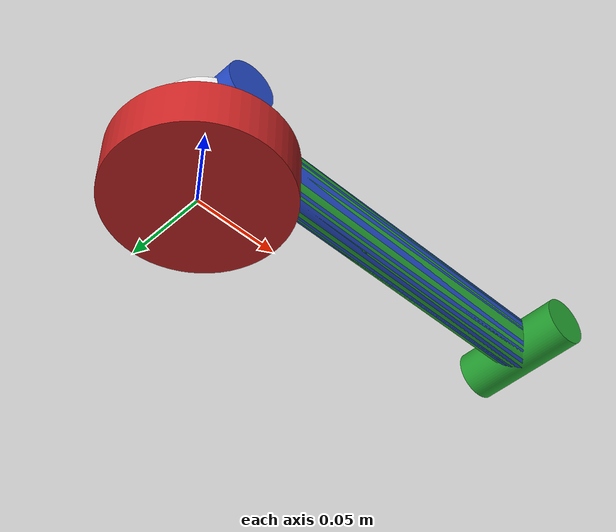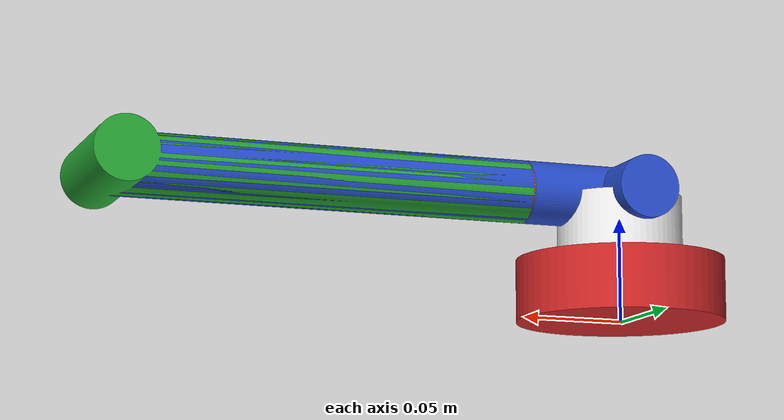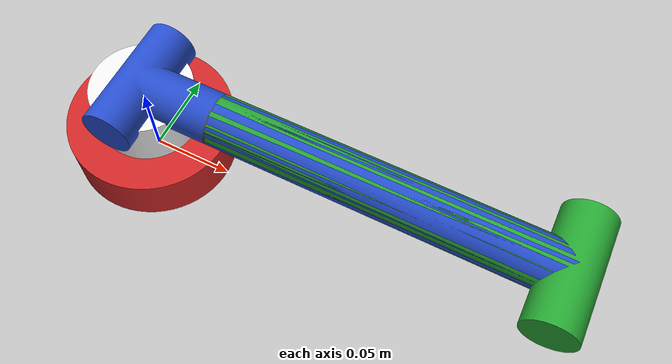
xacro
<?xml version="1.0"?>
  <robot xmlns:xacro="http://ros.org/wiki/xacro" name="manipulator">

    <xacro:macro name="inertial_cuboid" params="mass x_length y_length z_length">
      <inertial>
        <mass value="${mass}" />
        <origin xyz="0 0 0" />
        <inertia ixx="${(1/12) * mass * (y_length*y_length + z_length*z_length)}" ixy="0.0" ixz="0.0"
          iyy="${(1/12) * mass * (x_length*x_length + z_length*z_length)}" iyz="0.0"
          izz="${(1/12) * mass * (x_length*x_length + y_length*y_length)}" />
      </inertial>
    </xacro:macro>

    <xacro:macro name="inertial_dummy">
      <xacro:inertial_cuboid mass="1.0" x_length="0.01" y_length="0.01" z_length="0.01" />
    </xacro:macro>

    <xacro:property name="base_height" value="0.03" />
    <xacro:property name="link1_length" value="0.03" />
    <xacro:property name="link2_length" value="0.25" />
    <xacro:property name="link3_length" value="0.20" />

    <link name="world" />

    <joint name="fixed_joint" type="fixed">
      <parent link="world"/>
      <child link="base_link"/>
      <origin xyz="0 0 0" rpy="0 0 0"/>
    </joint>

    <link name="base_link">
      <visual>
        <origin xyz="0 0 0" rpy="0 0 0" />
        <geometry>
          <mesh filename="$(cwd)/manipulator_gazebo/model/manipulator/base.stl"/>
        </geometry>
      </visual>
      <collision>
        <origin xyz="0 0 0" rpy="0 0 0" />
        <geometry>
          <mesh filename="$(cwd)/manipulator_gazebo/model/manipulator/base.stl"/>
        </geometry>
      </collision>
      <xacro:inertial_dummy/>
    </link>

    <gazebo reference="base_link">
      <material>Gazebo/Red</material>
    </gazebo>

    <joint name="joint_1" type="continuous">
      <parent link="base_link"/>
      <child link="link_1"/>
      <axis xyz="0 0 1"/>
      <origin xyz="0 0 ${base_height}" rpy="0 0 0"/>
    </joint>

    <link name="link_1">
      <visual>
        <origin xyz="0 0 0" rpy="0 0 0" />
        <geometry>
          <mesh filename="$(cwd)/manipulator_gazebo/model/manipulator/link_1.stl"/>
        </geometry>
      </visual>
      <collision>
        <origin xyz="0 0 0" rpy="0 0 0" />
        <geometry>
          <mesh filename="$(cwd)/manipulator_gazebo/model/manipulator/link_1.stl"/>
        </geometry>
      </collision>
      <xacro:inertial_dummy/>
    </link>

    <gazebo reference="link_1">
      <material>Gazebo/White</material>
      <turnGravityOff>true</turnGravityOff>
    </gazebo>

    <joint name="joint_2" type="continuous">
      <parent link="link_1"/>
      <child link="link_2"/>
      <axis xyz="0 0 1"/>
      <origin xyz="0 0 ${link1_length}" rpy="${pi/2} 0 0"/>
    </joint>

    <link name="link_2">
      <visual>
        <origin xyz="0 0 0" rpy="0 0 0" />
        <geometry>
          <mesh filename="$(cwd)/manipulator_gazebo/model/manipulator/link_2.stl"/>
        </geometry>
      </visual>
      <collision>
        <origin xyz="0 0 0" rpy="0 0 0" />
        <geometry>
          <mesh filename="$(cwd)/manipulator_gazebo/model/manipulator/link_2.stl"/>
        </geometry>
      </collision>
      <xacro:inertial_dummy/>
    </link>

    <gazebo reference="link_2">
      <material>Gazebo/Blue</material>
      <turnGravityOff>true</turnGravityOff>
    </gazebo>

    <joint name="joint_3" type="continuous">
      <parent link="link_2"/>
      <child link="link_3"/>
      <axis xyz="0 0 1"/>
      <origin xyz="${link2_length} 0 0" rpy="${pi} ${pi} 0"/>
    </joint>

    <link name="link_3">
      <visual>
        <origin xyz="0 0 0" rpy="0 0 0" />
        <geometry>
          <mesh filename="$(cwd)/manipulator_gazebo/model/manipulator/link_3.stl"/>
        </geometry>
      </visual>
      <collision>
        <origin xyz="0 0 0" rpy="0 0 0" />
        <geometry>
          <mesh filename="$(cwd)/manipulator_gazebo/model/manipulator/link_3.stl"/>
        </geometry>
      </collision>
      <xacro:inertial_dummy/>
    </link>

    <gazebo reference="link_3">
      <material>Gazebo/Green</material>
      <turnGravityOff>true</turnGravityOff>
    </gazebo>

    <joint name="joint_4" type="fixed">
      <parent link="link_3"/>
      <child link="link_4"/>
      <origin xyz="${link3_length} 0 0" rpy="0 0 0"/>
    </joint>

    <link name="link_4">
      <visual>
        <origin xyz="0 0 0" rpy="0 0 0" />
        <geometry>
          <mesh filename="$(cwd)/manipulator_gazebo/model/manipulator/sphere.stl"/>
        </geometry>
      </visual>
      <collision>
        <origin xyz="0 0 0" rpy="0 0 0" />
        <geometry>
          <mesh filename="$(cwd)/manipulator_gazebo/model/manipulator/sphere.stl"/>
        </geometry>
      </collision>
      <xacro:inertial_dummy/>
    </link>

    <gazebo reference="joint_4">
      <preserveFixedJoint>true</preserveFixedJoint>
    </gazebo>

    <gazebo reference="link_4">
      <turnGravityOff>true</turnGravityOff>
    </gazebo>

    <gazebo>
      <plugin name="manipulator_drive_plugin" filename="libmanipulator_drive.so">
      </plugin>
    </gazebo>

  </robot>
